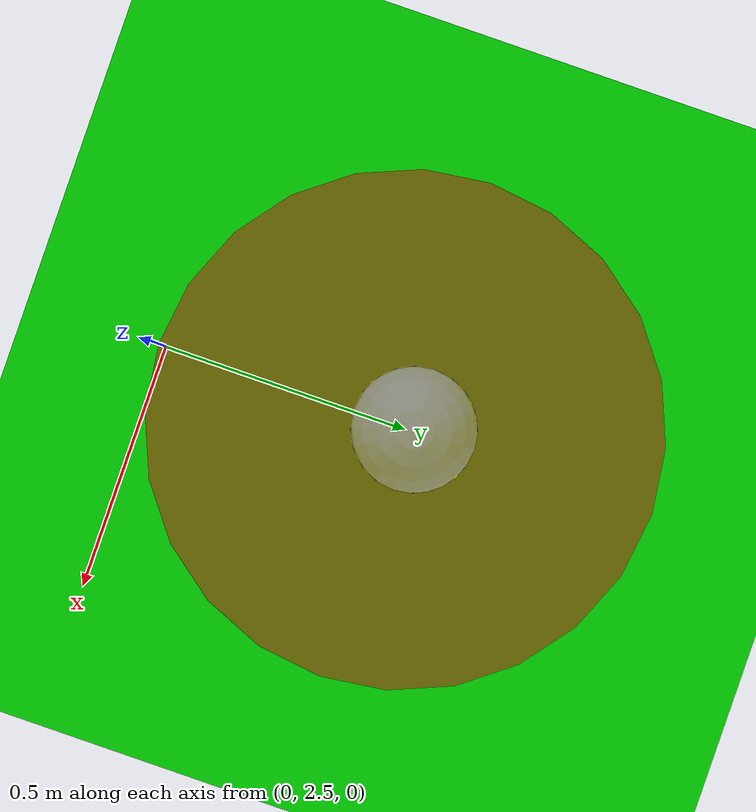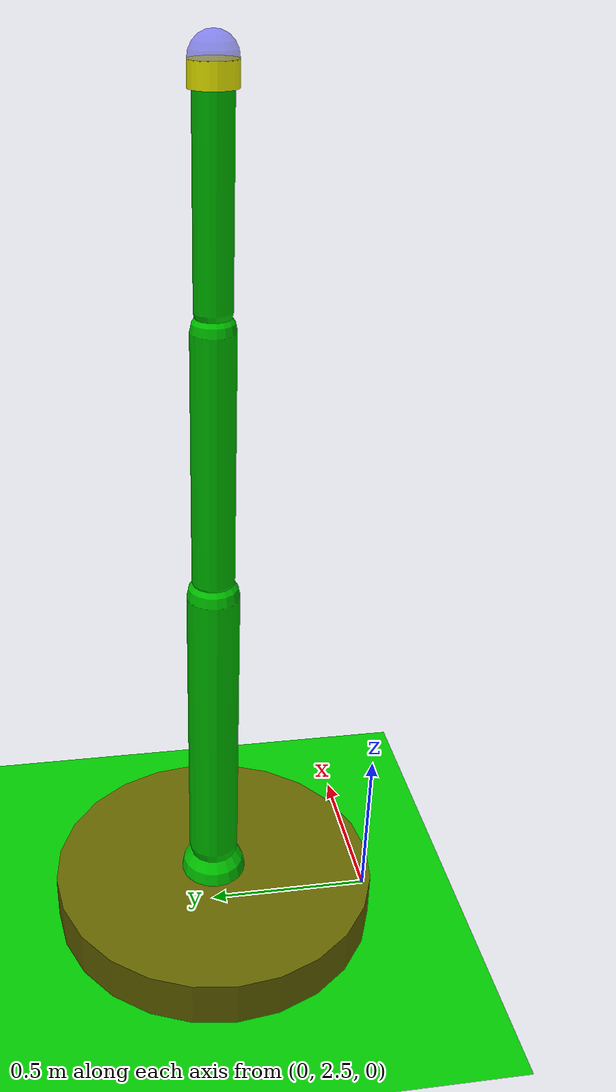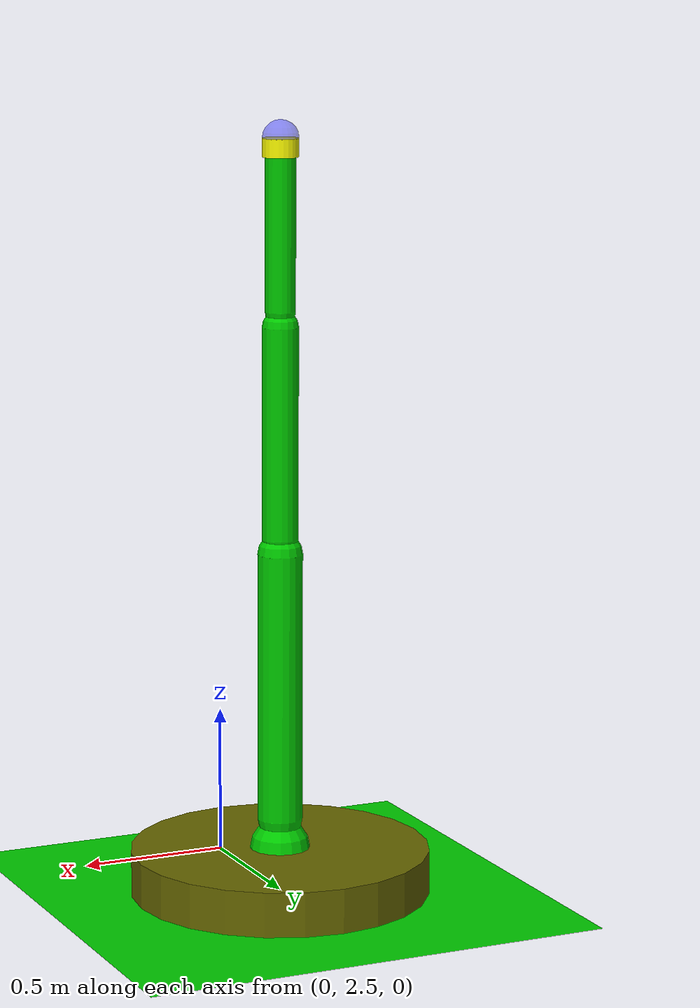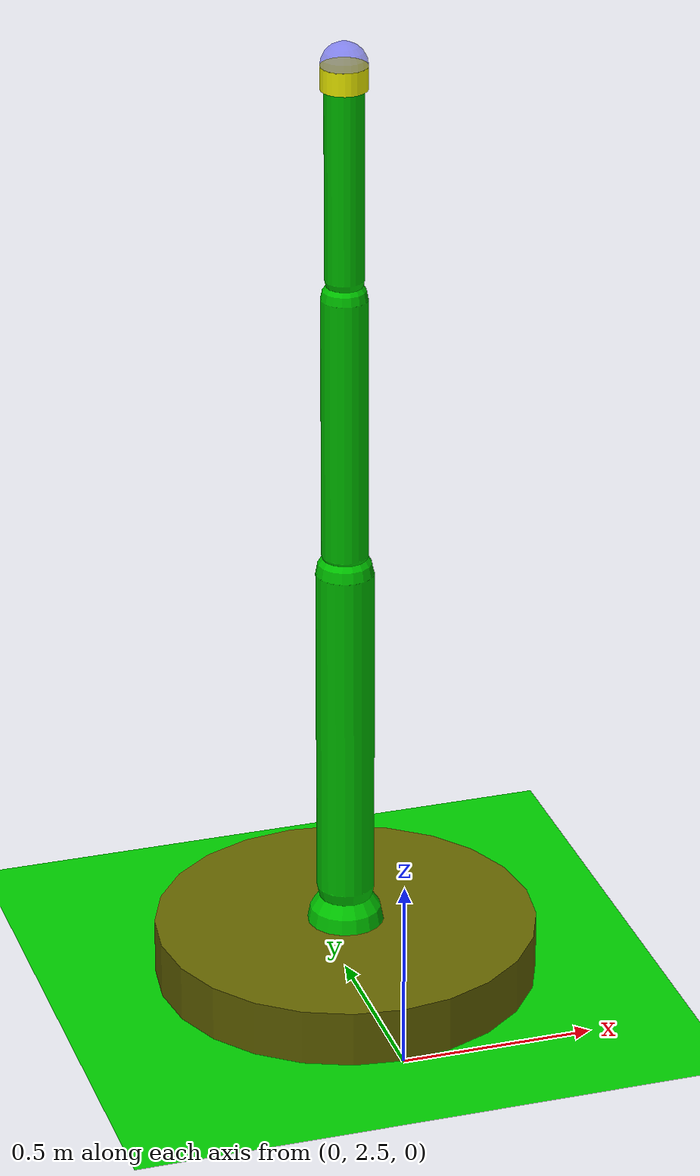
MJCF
<mujoco model="tentacle">
  <compiler coordinate="local" inertiafromgeom="true"/>

  <option gravity="0 0 -9.81" integrator="RK4" timestep="0.005"/>

  <default>
    <joint type="hinge"  pos="0 0 0" axis="0 1 0" limited='true' damping="0.05" />
    <geom type="capsule" conaffinity="1" contype="1" condim='3'
          friction=".1 .1 .1" rgba="0 .8 .0 1" pos='0 0 0' margin="0.001"/>
    <site type="sphere" rgba="1 1 1 0.5" pos="0 0 0" size="0.0001"/>
    <motor ctrllimited='true' gear="10" />
  </default>

  <asset>
    <texture name="texplane" type="2d" builtin="checker" rgb1=".2 .9 .4" rgb2=".1 .7 .2" width="100" height="100"/>
    <material name='MatPlane' reflectance='0.0' texture="texplane" texrepeat="1 1" texuniform="true"/>
  </asset>

  <visual>
    <quality shadowsize="4096"/>
  </visual>

  <custom>
    <numeric data="0" name="frame_skip"/>
  </custom>

  <size nstack="3000"/>

  <!-- world -->
  <worldbody>
    <!-- sun -->
    <light diffuse=".5 .5 .5" pos="0 30 30" dir="0 -1 -1"/>

    <!-- ground -->
    <geom name='floor' size='10 10 0.125' type='plane' material="MatPlane"/>

    <!-- agent -->
    <body name="agent" pos="0 3 0">

      <!-- base -->
      <geom name='base' type='cylinder' fromto='0 0 0  0 0 .15' size='.5' rgba=".4 .4 .0 1"/>
      <geom fromto="0 0 .1 0 0 .15" size="0.1"/>

      <!-- segment 1 -->
      <body name="segment_1" pos="0 0 0.25">
        <joint name="hinge_1" range=' -70 +70'/>
        <geom fromto="0 0 0 0 0 .9" size="0.075"/>

        <!-- segment 2 -->
        <body name="segment_2" pos="0 0 .95">
          <joint name="hinge_2" range=' -120 +120'/>
          <geom fromto="0 0 0 0 0 .7" size="0.06"/>

          <!-- segment 3 -->
          <body name="segment_3" pos="0 0 .75">
            <joint name="hinge_3" range=' -150 +150'/>
            <geom fromto="0 0 0 0 0 .5" size="0.05"/>

            <!-- head -->
            <body name="head" pos="0 0 .5">
              <geom type='cylinder' fromto='0 0 0  0 0 .06' rgba="1.2 1.2 0. 1" size='.06'/>
              <site name="head" pos="0 0 0.06" rgba=".2 .2 1.5 0.5" size='.06'/>
            </body>
          </body>
        </body>
      </body>
    </body>

    <!-- Target -->
    <body name="target" pos="0 3 1.5">
      <joint type="slide" axis="1 0 0" range="-3 +3" damping="0" frictionloss="1e10" frictional="true" />
      <joint type="slide" axis="0 0 1" range="-1 +1" damping="0" frictionloss="1e10" frictional="true" />

      <geom type="sphere" conaffinity="1" contype="1" rgba="1. 0. 0. 1." size=".05" mass="2e3"/>
      <site name="target" pos="0 0 0.025"/>
    </body>

  </worldbody>

  <actuator>
    <motor name="hinge_1" ctrlrange="-200 +200" joint="hinge_1"/>
    <motor name="hinge_2" ctrlrange="-150 +150" joint="hinge_2"/>
    <motor name="hinge_3" ctrlrange="-100 +100" joint="hinge_3"/>
  </actuator>

</mujoco>
